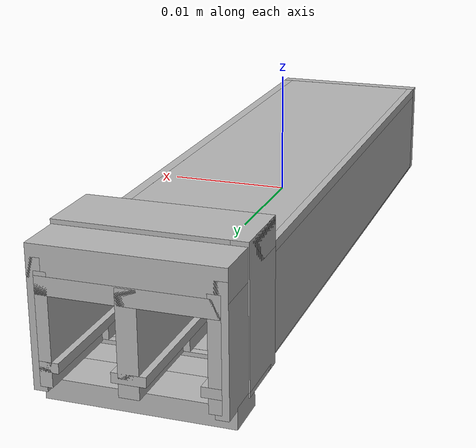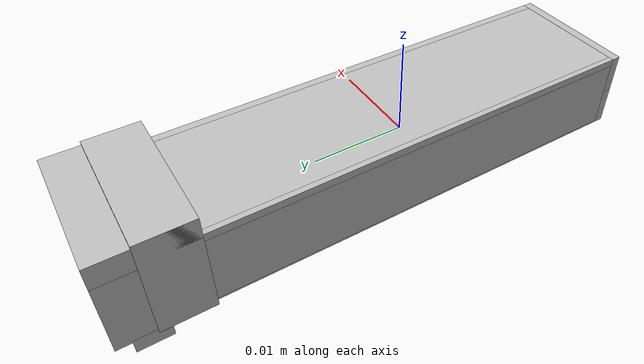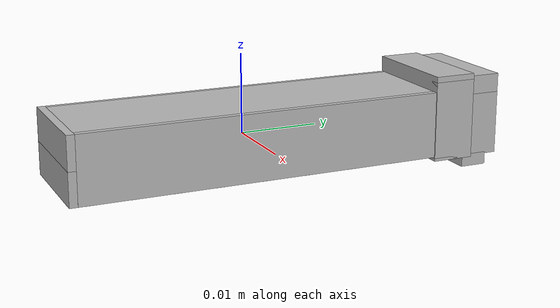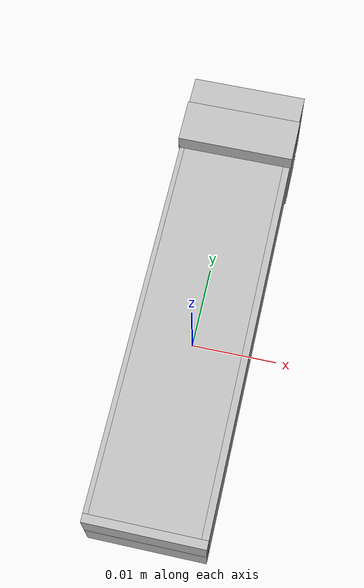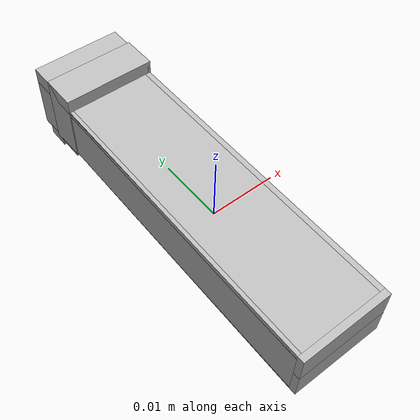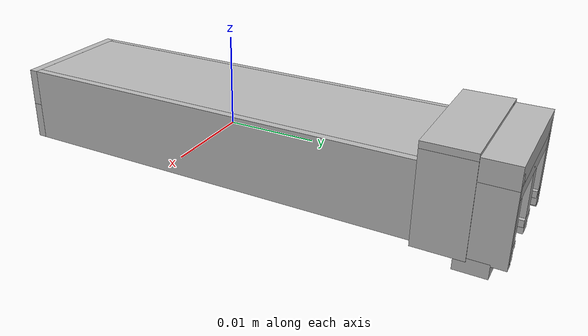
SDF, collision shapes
<?xml version="1.0" ?>
<sdf version="1.9">
  <model name="SFP Module">
    <link name="sfp_module_link">
      <inertial auto="true">
        <mass>0.02</mass>
      </inertial>
      <visual name="sfp_module_visual">
        <geometry>
          <mesh>
            <uri>sfp_module_visual.glb</uri>
          </mesh>
        </geometry>
      </visual>
      <collision name="port_collider_box">
        <pose>-0.00571 0.022559 -0.00275 1.570796 -0.0 0.0</pose>
        <geometry>
          <box>
            <size>0.00142 0.00075 0.020375</size>
          </box>
        </geometry>
        <surface>
          <friction>
            <torsional>
              <coefficient>0.1</coefficient>
            </torsional>
            <bullet>
              <friction>0.1</friction>
              <friction2>0.1</friction2>
            </bullet>
          </friction>
        </surface>
      </collision>
      <collision name="port_collider_box.001">
        <pose>-0.0 0.022559 -0.00275 1.570796 -0.0 0.0</pose>
        <geometry>
          <box>
            <size>0.0025 0.00075 0.020375</size>
          </box>
        </geometry>
        <surface>
          <friction>
            <torsional>
              <coefficient>0.1</coefficient>
            </torsional>
            <bullet>
              <friction>0.1</friction>
              <friction2>0.1</friction2>
            </bullet>
          </friction>
        </surface>
      </collision>
      <collision name="port_collider_box.002">
        <pose>0.0 0.02732 -0.00447 1.570796 -0.0 0.0</pose>
        <geometry>
          <box>
            <size>0.01284 0.00019 0.007302</size>
          </box>
        </geometry>
        <surface>
          <friction>
            <torsional>
              <coefficient>0.1</coefficient>
            </torsional>
            <bullet>
              <friction>0.1</friction>
              <friction2>0.1</friction2>
            </bullet>
          </friction>
        </surface>
      </collision>
      <collision name="port_collider_box.003">
        <pose>0.00596 0.022559 -8.7e-05 1.570796 -0.0 0.0</pose>
        <geometry>
          <box>
            <size>0.00092 0.008279 0.020375</size>
          </box>
        </geometry>
        <surface>
          <friction>
            <torsional>
              <coefficient>0.1</coefficient>
            </torsional>
            <bullet>
              <friction>0.1</friction>
              <friction2>0.1</friction2>
            </bullet>
          </friction>
        </surface>
      </collision>
      <collision name="port_collider_box.004">
        <pose>0.0 0.022559 0.003049 1.570796 -0.0 0.0</pose>
        <geometry>
          <box>
            <size>0.01284 0.001348 0.020375</size>
          </box>
        </geometry>
        <surface>
          <friction>
            <torsional>
              <coefficient>0.1</coefficient>
            </torsional>
            <bullet>
              <friction>0.1</friction>
              <friction2>0.1</friction2>
            </bullet>
          </friction>
        </surface>
      </collision>
      <collision name="port_collider_box.005">
        <pose>-0.00596 0.022559 -8.7e-05 1.570796 -0.0 0.0</pose>
        <geometry>
          <box>
            <size>0.00092 0.008279 0.020375</size>
          </box>
        </geometry>
        <surface>
          <friction>
            <torsional>
              <coefficient>0.1</coefficient>
            </torsional>
            <bullet>
              <friction>0.1</friction>
              <friction2>0.1</friction2>
            </bullet>
          </friction>
        </surface>
      </collision>
      <collision name="port_collider_box.006">
        <pose>0.00571 0.022559 -0.00275 1.570796 -0.0 0.0</pose>
        <geometry>
          <box>
            <size>0.00142 0.00075 0.020375</size>
          </box>
        </geometry>
        <surface>
          <friction>
            <torsional>
              <coefficient>0.1</coefficient>
            </torsional>
            <bullet>
              <friction>0.1</friction>
              <friction2>0.1</friction2>
            </bullet>
          </friction>
        </surface>
      </collision>
      <collision name="port_collider_box.007">
        <pose>0.0 0.022559 -0.000239 1.570796 -0.0 0.0</pose>
        <geometry>
          <box>
            <size>0.0015 0.007747 0.020375</size>
          </box>
        </geometry>
        <surface>
          <friction>
            <torsional>
              <coefficient>0.1</coefficient>
            </torsional>
            <bullet>
              <friction>0.1</friction>
              <friction2>0.1</friction2>
            </bullet>
          </friction>
        </surface>
      </collision>
      <collision name="port_collider_box.008">
        <pose>-0.00571 0.018813 -0.003546 1.570796 -0.0 0.0</pose>
        <geometry>
          <box>
            <size>0.00142 0.001006 0.012883</size>
          </box>
        </geometry>
        <surface>
          <friction>
            <torsional>
              <coefficient>0.1</coefficient>
            </torsional>
            <bullet>
              <friction>0.1</friction>
              <friction2>0.1</friction2>
            </bullet>
          </friction>
        </surface>
      </collision>
      <collision name="port_collider_box.009">
        <pose>0.00571 0.018813 -0.003546 1.570796 -0.0 0.0</pose>
        <geometry>
          <box>
            <size>0.00142 0.001006 0.012883</size>
          </box>
        </geometry>
        <surface>
          <friction>
            <torsional>
              <coefficient>0.1</coefficient>
            </torsional>
            <bullet>
              <friction>0.1</friction>
              <friction2>0.1</friction2>
            </bullet>
          </friction>
        </surface>
      </collision>
      <collision name="latch_collider_box">
        <pose>0.0 0.029531 -0.005175 1.570796 -0.0 0.0</pose>
        <geometry>
          <box>
            <size>0.01384 0.001601 0.003426</size>
          </box>
        </geometry>
        <surface>
          <friction>
            <torsional>
              <coefficient>0.1</coefficient>
            </torsional>
            <bullet>
              <friction>0.1</friction>
              <friction2>0.1</friction2>
            </bullet>
          </friction>
        </surface>
      </collision>
      <collision name="latch_collider_box.001">
        <pose>0.006405 0.030896 0.000207 1.570796 -0.0 0.0</pose>
        <geometry>
          <box>
            <size>0.001029 0.009544 0.0037</size>
          </box>
        </geometry>
        <surface>
          <friction>
            <torsional>
              <coefficient>0.1</coefficient>
            </torsional>
            <bullet>
              <friction>0.1</friction>
              <friction2>0.1</friction2>
            </bullet>
          </friction>
        </surface>
      </collision>
      <collision name="latch_collider_box.002">
        <pose>0.0 0.030896 0.004716 1.570796 -0.0 0.0</pose>
        <geometry>
          <box>
            <size>0.01384 0.002383 0.0037</size>
          </box>
        </geometry>
        <surface>
          <friction>
            <torsional>
              <coefficient>0.1</coefficient>
            </torsional>
            <bullet>
              <friction>0.1</friction>
              <friction2>0.1</friction2>
            </bullet>
          </friction>
        </surface>
      </collision>
      <collision name="latch_collider_box.003">
        <pose>-0.006437 0.030896 0.000207 1.570796 -0.0 0.0</pose>
        <geometry>
          <box>
            <size>0.000965 0.009544 0.0037</size>
          </box>
        </geometry>
        <surface>
          <friction>
            <torsional>
              <coefficient>0.1</coefficient>
            </torsional>
            <bullet>
              <friction>0.1</friction>
              <friction2>0.1</friction2>
            </bullet>
          </friction>
        </surface>
      </collision>
      <collision name="head_collider_box">
        <pose>0.006358 0.026353 0.000375 1.570796 -0.0 0.0</pose>
        <geometry>
          <box>
            <size>0.001284 0.01025 0.0054</size>
          </box>
        </geometry>
        <surface>
          <friction>
            <torsional>
              <coefficient>0.1</coefficient>
            </torsional>
            <bullet>
              <friction>0.1</friction>
              <friction2>0.1</friction2>
            </bullet>
          </friction>
        </surface>
      </collision>
      <collision name="head_collider_box.001">
        <pose>-0.006358 0.026353 0.000765 1.570796 -0.0 0.0</pose>
        <geometry>
          <box>
            <size>0.001284 0.01097 0.0054</size>
          </box>
        </geometry>
        <surface>
          <friction>
            <torsional>
              <coefficient>0.1</coefficient>
            </torsional>
            <bullet>
              <friction>0.1</friction>
              <friction2>0.1</friction2>
            </bullet>
          </friction>
        </surface>
      </collision>
      <collision name="head_collider_box.002">
        <pose>0.0 0.026353 0.005128 1.570796 -0.0 0.0</pose>
        <geometry>
          <box>
            <size>0.014 0.002245 0.0054</size>
          </box>
        </geometry>
        <surface>
          <friction>
            <torsional>
              <coefficient>0.1</coefficient>
            </torsional>
            <bullet>
              <friction>0.1</friction>
              <friction2>0.1</friction2>
            </bullet>
          </friction>
        </surface>
      </collision>
      <collision name="head_collider_box.003">
        <pose>0.0 0.026353 -0.004563 1.570796 -0.0 0.0</pose>
        <geometry>
          <box>
            <size>0.014 0.000375 0.0054</size>
          </box>
        </geometry>
        <surface>
          <friction>
            <torsional>
              <coefficient>0.1</coefficient>
            </torsional>
            <bullet>
              <friction>0.1</friction>
              <friction2>0.1</friction2>
            </bullet>
          </friction>
        </surface>
      </collision>
      <collision name="body_collider_box">
        <pose>0.0 0.001 0.00383 0.0 0.0 0.0</pose>
        <geometry>
          <box>
            <size>0.01375 0.0473 0.000789</size>
          </box>
        </geometry>
        <surface>
          <friction>
            <torsional>
              <coefficient>0.1</coefficient>
            </torsional>
            <bullet>
              <friction>0.1</friction>
              <friction2>0.1</friction2>
            </bullet>
          </friction>
        </surface>
      </collision>
      <collision name="body_collider_box.001">
        <pose>0.0 0.001 -0.004138 0.0 0.0 0.0</pose>
        <geometry>
          <box>
            <size>0.01375 0.0473 0.000178</size>
          </box>
        </geometry>
        <surface>
          <friction>
            <torsional>
              <coefficient>0.1</coefficient>
            </torsional>
            <bullet>
              <friction>0.1</friction>
              <friction2>0.1</friction2>
            </bullet>
          </friction>
        </surface>
      </collision>
      <collision name="body_collider_box.002">
        <pose>-0.006588 0.001 0.0 0.0 0.0 0.0</pose>
        <geometry>
          <box>
            <size>0.000574 0.0473 0.00845</size>
          </box>
        </geometry>
        <surface>
          <friction>
            <torsional>
              <coefficient>0.1</coefficient>
            </torsional>
            <bullet>
              <friction>0.1</friction>
              <friction2>0.1</friction2>
            </bullet>
          </friction>
        </surface>
      </collision>
      <collision name="body_collider_box.003">
        <pose>0.00647 0.001 0.0 0.0 0.0 0.0</pose>
        <geometry>
          <box>
            <size>0.000811 0.0473 0.00845</size>
          </box>
        </geometry>
        <surface>
          <friction>
            <torsional>
              <coefficient>0.1</coefficient>
            </torsional>
            <bullet>
              <friction>0.1</friction>
              <friction2>0.1</friction2>
            </bullet>
          </friction>
        </surface>
      </collision>
      <collision name="port_collider_box.010">
        <pose>0.0 0.01229 0.000119 1.570796 -0.0 0.0</pose>
        <geometry>
          <box>
            <size>0.01284 0.007763 0.011729</size>
          </box>
        </geometry>
        <surface>
          <friction>
            <torsional>
              <coefficient>0.1</coefficient>
            </torsional>
            <bullet>
              <friction>0.1</friction>
              <friction2>0.1</friction2>
            </bullet>
          </friction>
        </surface>
      </collision>
      <collision name="port_collider_box002_collider_box">
        <pose>0.0 0.024453 -0.004254 1.570796 -0.0 0.0</pose>
        <geometry>
          <box>
            <size>0.01284 0.000409 0.001601</size>
          </box>
        </geometry>
        <surface>
          <friction>
            <torsional>
              <coefficient>0.1</coefficient>
            </torsional>
            <bullet>
              <friction>0.1</friction>
              <friction2>0.1</friction2>
            </bullet>
          </friction>
        </surface>
      </collision>
      <collision name="port_collider_box.011">
        <pose>0.0 0.018813 -0.003546 1.570796 -0.0 0.0</pose>
        <geometry>
          <box>
            <size>0.0025 0.001006 0.012883</size>
          </box>
        </geometry>
        <surface>
          <friction>
            <torsional>
              <coefficient>0.1</coefficient>
            </torsional>
            <bullet>
              <friction>0.1</friction>
              <friction2>0.1</friction2>
            </bullet>
          </friction>
        </surface>
      </collision>
    </link>
    <link name="sfp_tip_link">
      <inertial>
        <mass>1e-3</mass>
        <inertia>
          <ixx>1e-6</ixx>
          <iyy>1e-6</iyy>
          <izz>1e-6</izz>
        </inertia>
      </inertial>
      <collision name="contact_collision">
        <pose>0.0 0.0021125 -0.0005 0 0.0 0.0</pose>
        <geometry>
          <box>
            <size>0.01375 0.004225 0.001</size>
          </box>
        </geometry>
      </collision>
      <collision name="non_contact_collision">
        <pose>0.0 -0.0021125 -0.0005 0 0.0 0.0</pose>
        <geometry>
          <box>
            <size>0.01375 0.004225 0.001</size>
          </box>
        </geometry>
      </collision>
      <pose>0 -0.02365 0 1.5708 0 0</pose>
    </link>
    <joint name="sfp_tip_joint" type="fixed">
      <parent>sfp_module_link</parent>
      <child>sfp_tip_link</child>
    </joint>
  </model>
</sdf>
